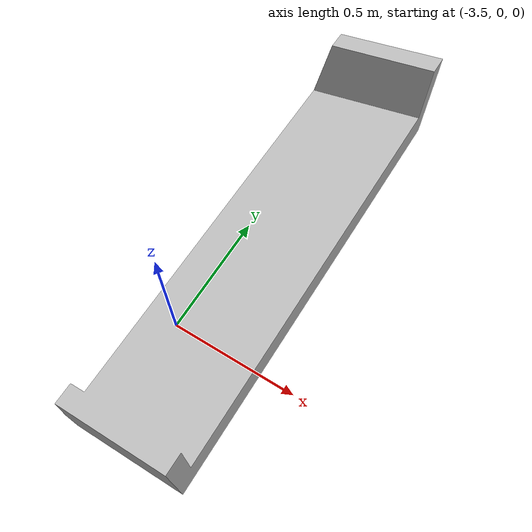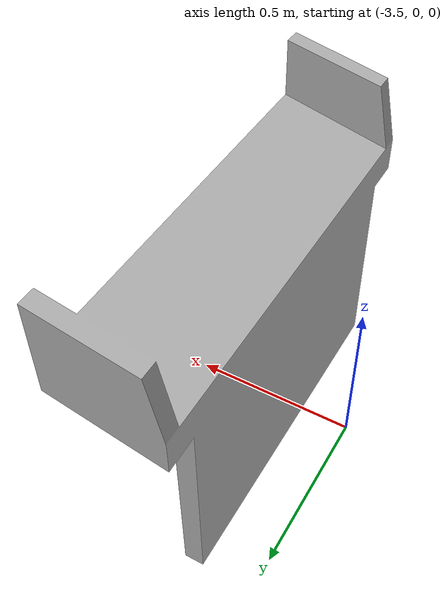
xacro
<?xml version="1.0"?>
<robot name="storage" xmlns:xacro="http://ros.org/wiki/xacro">

  <link name="base_link">
    <inertial>
      <origin xyz="-3.602605574021378 -0.024964728950955202 0.41141600790269395" rpy="0 0 0"/>
      <mass value="2829.992672413793"/>
      <inertia ixx="354.247052" iyy="506.140738" izz="536.984367" ixy="-38.673416" iyz="-7.871541" ixz="-70.928919"/>
    </inertial>
    <visual>
      <origin xyz="0 0 0" rpy="0 0 0"/>
      <geometry>
        <mesh filename="package://conveyor_belt/meshes/elements/storage_base_link.stl" scale="0.001 0.001 0.001"/>
      </geometry>
      <material name="silver">
        <color rgba="0.7 0.7 0.7 1.0"/>
      </material>
    </visual>
    <collision>
      <origin xyz="-4.175 0 0.585" rpy="0 0 0"/>
      <geometry>
        <box size="0.85 0.80 0.03"/>
      </geometry>
    </collision>
    <collision>
      <origin xyz="-3.3875 0 0.775" rpy="0 -0.204 0"/>
      <geometry>
        <box size="0.725 0.90 0.03"/>
      </geometry>
    </collision>
  </link>

  <gazebo>
    <static>true</static>
  </gazebo>

  <gazebo reference="base_link">
    <mu1>0.08</mu1>
    <mu2>0.08</mu2>
    <slip1>0.5</slip1>
    <slip2>0.5</slip2>
    <kp>1000000.0</kp>
    <kd>10.0</kd>
    <maxContacts>20</maxContacts>
  </gazebo>
</robot>
